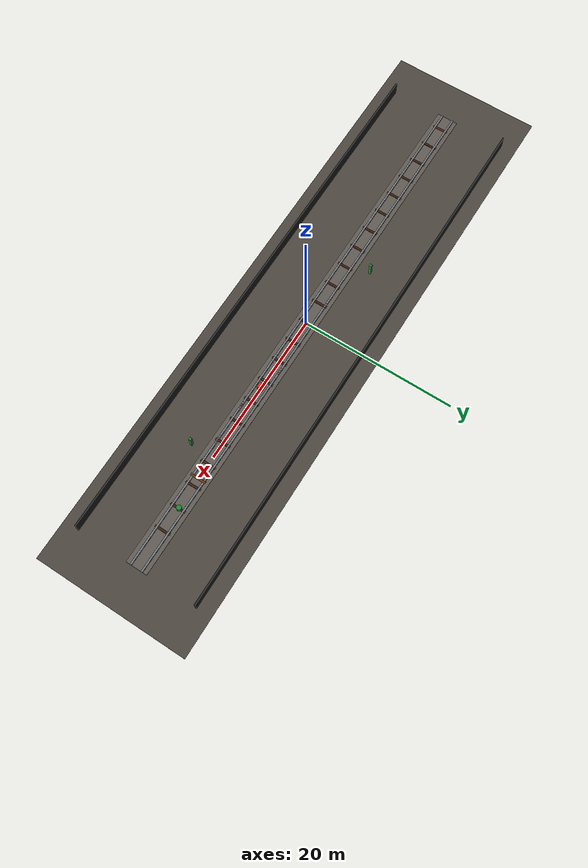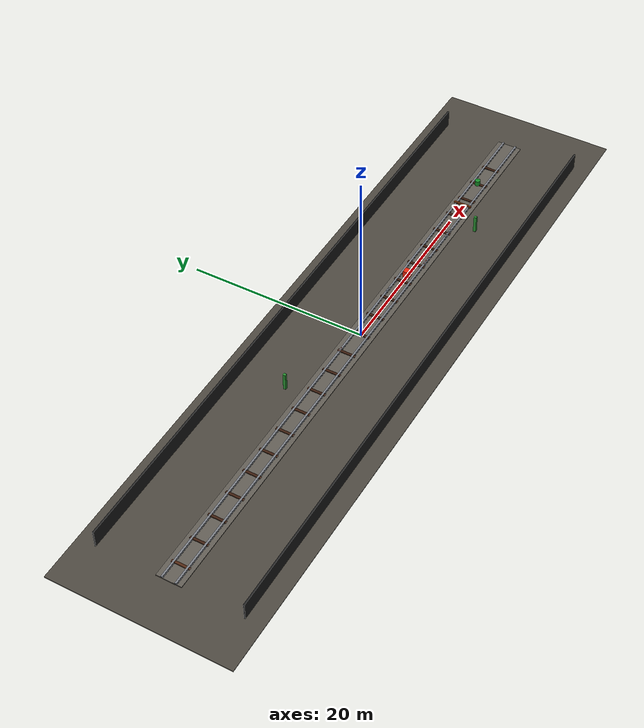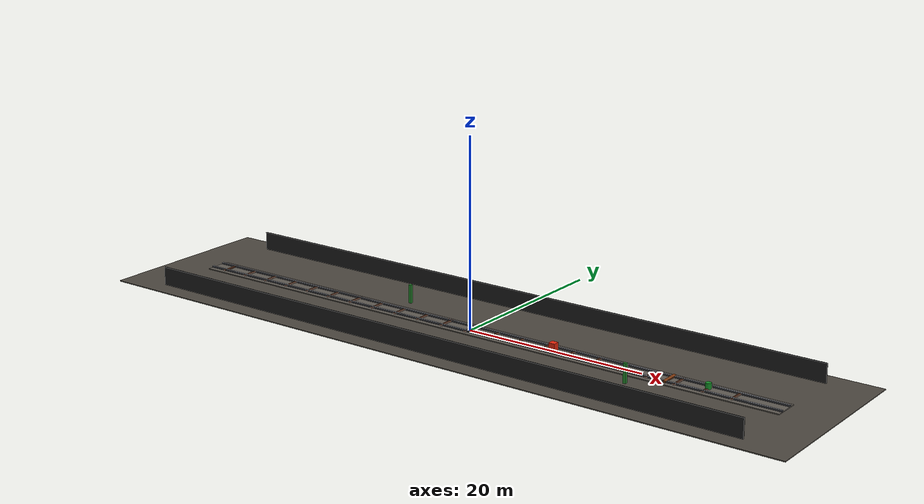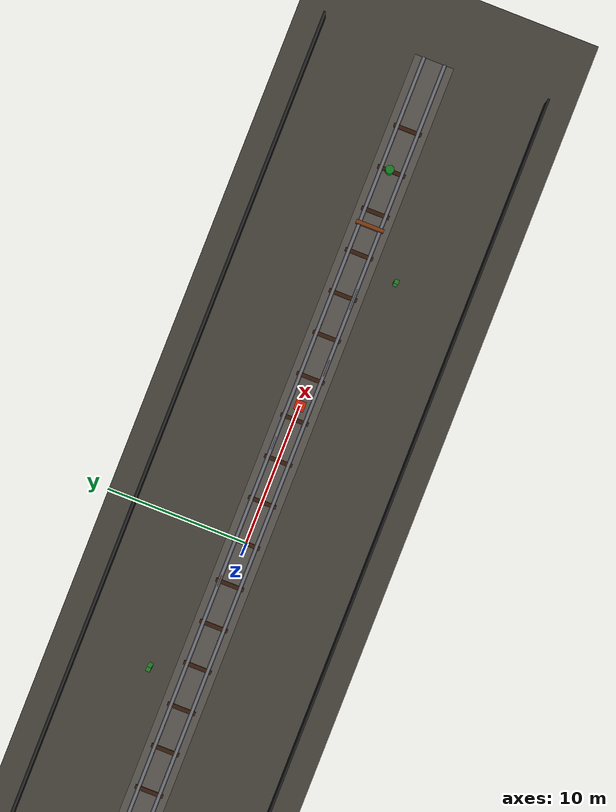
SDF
<?xml version="1.0" ?>

<sdf version="1.6">

  <world name="railway_inspection_world">

    <!-- ==================== PHYSICS ==================== -->

    <physics type="ode">
      <max_step_size>0.001</max_step_size>
      <real_time_update_rate>1000</real_time_update_rate>
      <real_time_factor>1</real_time_factor>
    </physics>

    <!-- ==================== LIGHTING ==================== -->

    <include>
      <uri>model://sun</uri>
    </include>

    <!-- ==================== GROUND ==================== -->

    <model name="ground">
      <static>true</static>

      <link name="ground_link">

        <collision name="ground_collision">
          <geometry>
            <box>
              <size>80 20 0.10</size>
            </box>
          </geometry>
          <pose>0 0 -0.05 0 0 0</pose>
        </collision>

        <visual name="ground_visual">
          <geometry>
            <box>
              <size>80 20 0.10</size>
            </box>
          </geometry>

          <pose>0 0 -0.05 0 0 0</pose>

          <material>
            <ambient>0.22 0.20 0.18 1</ambient>
            <diffuse>0.30 0.28 0.25 1</diffuse>
          </material>

        </visual>

      </link>
    </model>

    <!-- BALLAST BED                                       -->

    <model name="ballast_bed">
      <static>true</static>

      <link name="ballast_link">

        <collision name="ballast_collision">
          <geometry>
            <box>
              <size>70 2.8 0.10</size>
            </box>
          </geometry>
          <pose>0 0 0.05 0 0 0</pose>
        </collision>

        <visual name="ballast_visual">

          <geometry>
            <box>
              <size>70 2.8 0.10</size>
            </box>
          </geometry>

          <pose>0 0 0.05 0 0 0</pose>

          <material>
            <ambient>0.32 0.30 0.28 1</ambient>
            <diffuse>0.38 0.36 0.33 1</diffuse>
          </material>

        </visual>

      </link>
    </model>

    <!-- RAILS                                             -->

    <model name="left_rail">
      <static>true</static>

      <link name="rail_link">

        <collision name="rail_collision">

          <geometry>
            <box>
              <size>70 0.14 0.16</size>
            </box>
          </geometry>

          <pose>0 0.75 0.18 0 0 0</pose>

        </collision>

                  <visual name="rail_base_visual">
            <geometry>
              <box>
                <size>70 0.30 0.035</size>
              </box>
            </geometry>
            <pose>0 0.75 0.105 0 0 0</pose>
            <material>
              <ambient>0.22 0.23 0.25 1</ambient>
              <diffuse>0.30 0.31 0.34 1</diffuse>
              <specular>0.75 0.75 0.78 1</specular>
            </material>
          </visual>

          <visual name="rail_web_visual">
            <geometry>
              <box>
                <size>70 0.10 0.105</size>
              </box>
            </geometry>
            <pose>0 0.75 0.165 0 0 0</pose>
            <material>
              <ambient>0.25 0.26 0.28 1</ambient>
              <diffuse>0.36 0.37 0.40 1</diffuse>
              <specular>0.85 0.85 0.88 1</specular>
            </material>
          </visual>

          <visual name="rail_head_visual">
            <geometry>
              <box>
                <size>70 0.20 0.055</size>
              </box>
            </geometry>
            <pose>0 0.75 0.225 0 0 0</pose>
            <material>
              <ambient>0.36 0.37 0.39 1</ambient>
              <diffuse>0.48 0.49 0.52 1</diffuse>
              <specular>0.95 0.95 0.98 1</specular>
            </material>
          </visual>

      </link>
    </model>

    <model name="right_rail">
      <static>true</static>

      <link name="rail_link">

        <collision name="rail_collision">

          <geometry>
            <box>
              <size>70 0.14 0.16</size>
            </box>
          </geometry>

          <pose>0 -0.75 0.18 0 0 0</pose>

        </collision>

                  <visual name="rail_base_visual">
            <geometry>
              <box>
                <size>70 0.30 0.035</size>
              </box>
            </geometry>
            <pose>0 -0.75 0.105 0 0 0</pose>
            <material>
              <ambient>0.22 0.23 0.25 1</ambient>
              <diffuse>0.30 0.31 0.34 1</diffuse>
              <specular>0.75 0.75 0.78 1</specular>
            </material>
          </visual>

          <visual name="rail_web_visual">
            <geometry>
              <box>
                <size>70 0.10 0.105</size>
              </box>
            </geometry>
            <pose>0 -0.75 0.165 0 0 0</pose>
            <material>
              <ambient>0.25 0.26 0.28 1</ambient>
              <diffuse>0.36 0.37 0.40 1</diffuse>
              <specular>0.85 0.85 0.88 1</specular>
            </material>
          </visual>

          <visual name="rail_head_visual">
            <geometry>
              <box>
                <size>70 0.20 0.055</size>
              </box>
            </geometry>
            <pose>0 -0.75 0.225 0 0 0</pose>
            <material>
              <ambient>0.36 0.37 0.39 1</ambient>
              <diffuse>0.48 0.49 0.52 1</diffuse>
              <specular>0.95 0.95 0.98 1</specular>
            </material>
          </visual>

      </link>
    </model>

    <!-- SLEEPER MACRO                                     -->

    <model name="sleepers">

      <static>true</static>

      <link name="sleeper_link">

        <visual name="sleeper_visual">

          <geometry>
            <box>
              <size>0.28 2.0 0.18</size>
            </box>
          </geometry>

          <material>
            <ambient>0.24 0.12 0.06 1</ambient>
            <diffuse>0.32 0.16 0.08 1</diffuse>
          </material>

        </visual>

        <collision name="sleeper_collision">

          <geometry>
            <box>
              <size>0.28 2.0 0.18</size>
            </box>
          </geometry>

        </collision>

      </link>

      <!-- Repeated sleepers -->

      <pose>-33 0 0.10 0 0 0</pose>

    </model>

    <!-- ADDITIONAL SLEEPERS                               -->

    <model name="sleeper_01">
      <static>true</static>
      <pose>-30 0 0.10 0 0 0</pose>
      <link name="link">
        <visual name="visual">
          <geometry><box><size>0.28 2.0 0.18</size></box></geometry>
          <material><ambient>0.24 0.12 0.06 1</ambient></material>
        </visual>
        <collision name="collision">
          <geometry><box><size>0.28 2.0 0.18</size></box></geometry>
        </collision>
      </link>
    </model>

    <model name="sleeper_02">
      <static>true</static>
      <pose>-27 0 0.10 0 0 0</pose>
      <link name="link">
        <visual name="visual">
          <geometry><box><size>0.28 2.0 0.18</size></box></geometry>
          <material><ambient>0.24 0.12 0.06 1</ambient></material>
        </visual>
        <collision name="collision">
          <geometry><box><size>0.28 2.0 0.18</size></box></geometry>
        </collision>
      </link>
    </model>

    <model name="sleeper_03">
      <static>true</static>
      <pose>-24 0 0.10 0 0 0</pose>
      <link name="link">
        <visual name="visual">
          <geometry><box><size>0.28 2.0 0.18</size></box></geometry>
          <material><ambient>0.24 0.12 0.06 1</ambient></material>
        </visual>
        <collision name="collision">
          <geometry><box><size>0.28 2.0 0.18</size></box></geometry>
        </collision>
      </link>
    </model>

    <model name="sleeper_04">
      <static>true</static>
      <pose>-21 0 0.10 0 0 0</pose>
      <link name="link">
        <visual name="visual">
          <geometry><box><size>0.28 2.0 0.18</size></box></geometry>
          <material><ambient>0.24 0.12 0.06 1</ambient></material>
        </visual>
        <collision name="collision">
          <geometry><box><size>0.28 2.0 0.18</size></box></geometry>
        </collision>
      </link>
    </model>

    <model name="sleeper_05">
      <static>true</static>
      <pose>-18 0 0.10 0 0 0</pose>
      <link name="link">
        <visual name="visual">
          <geometry><box><size>0.28 2.0 0.18</size></box></geometry>
          <material><ambient>0.24 0.12 0.06 1</ambient></material>
        </visual>
        <collision name="collision">
          <geometry><box><size>0.28 2.0 0.18</size></box></geometry>
        </collision>
      </link>
    </model>

    <model name="sleeper_06">
      <static>true</static>
      <pose>-15 0 0.10 0 0 0</pose>
      <link name="link">
        <visual name="visual">
          <geometry><box><size>0.28 2.0 0.18</size></box></geometry>
          <material><ambient>0.24 0.12 0.06 1</ambient></material>
        </visual>
        <collision name="collision">
          <geometry><box><size>0.28 2.0 0.18</size></box></geometry>
        </collision>
      </link>
    </model>

    <model name="sleeper_07">
      <static>true</static>
      <pose>-12 0 0.10 0 0 0</pose>
      <link name="link">
        <visual name="visual">
          <geometry><box><size>0.28 2.0 0.18</size></box></geometry>
          <material><ambient>0.24 0.12 0.06 1</ambient></material>
        </visual>
        <collision name="collision">
          <geometry><box><size>0.28 2.0 0.18</size></box></geometry>
        </collision>
      </link>
    </model>

    <model name="sleeper_08">
      <static>true</static>
      <pose>-9 0 0.10 0 0 0</pose>
      <link name="link">
        <visual name="visual">
          <geometry><box><size>0.28 2.0 0.18</size></box></geometry>
          <material><ambient>0.24 0.12 0.06 1</ambient></material>
        </visual>
        <collision name="collision">
          <geometry><box><size>0.28 2.0 0.18</size></box></geometry>
        </collision>
      </link>
    </model>

    <model name="sleeper_09">
      <static>true</static>
      <pose>-6 0 0.10 0 0 0</pose>
      <link name="link">
        <visual name="visual">
          <geometry><box><size>0.28 2.0 0.18</size></box></geometry>
          <material><ambient>0.24 0.12 0.06 1</ambient></material>
        </visual>
        <collision name="collision">
          <geometry><box><size>0.28 2.0 0.18</size></box></geometry>
        </collision>
      </link>
    </model>

    <model name="sleeper_10">
      <static>true</static>
      <pose>-3 0 0.10 0 0 0</pose>
      <link name="link">
        <visual name="visual">
          <geometry><box><size>0.28 2.0 0.18</size></box></geometry>
          <material><ambient>0.24 0.12 0.06 1</ambient></material>
        </visual>
        <collision name="collision">
          <geometry><box><size>0.28 2.0 0.18</size></box></geometry>
        </collision>
      </link>
    </model>

    <model name="sleeper_11">
      <static>true</static>
      <pose>0 0 0.10 0 0 0</pose>
      <link name="link">
        <visual name="visual">
          <geometry><box><size>0.28 2.0 0.18</size></box></geometry>
          <material><ambient>0.24 0.12 0.06 1</ambient></material>
        </visual>
        <collision name="collision">
          <geometry><box><size>0.28 2.0 0.18</size></box></geometry>
        </collision>
      </link>
    </model>

    <!-- More sleepers continue along the track -->

    <model name="sleeper_12">
      <static>true</static>
      <pose>3 0 0.10 0 0 0</pose>
      <link name="link">
        <visual name="visual">
          <geometry><box><size>0.28 2.0 0.18</size></box></geometry>
          <material><ambient>0.24 0.12 0.06 1</ambient></material>
        </visual>
        <collision name="collision">
          <geometry><box><size>0.28 2.0 0.18</size></box></geometry>
        </collision>
      </link>
    </model>

    <model name="sleeper_13">
      <static>true</static>
      <pose>6 0 0.10 0 0 0</pose>
      <link name="link">
        <visual name="visual">
          <geometry><box><size>0.28 2.0 0.18</size></box></geometry>
          <material><ambient>0.24 0.12 0.06 1</ambient></material>
        </visual>
        <collision name="collision">
          <geometry><box><size>0.28 2.0 0.18</size></box></geometry>
        </collision>
      </link>
    </model>

    <model name="sleeper_14">
      <static>true</static>
      <pose>9 0 0.10 0 0 0</pose>
      <link name="link">
        <visual name="visual">
          <geometry><box><size>0.28 2.0 0.18</size></box></geometry>
          <material><ambient>0.24 0.12 0.06 1</ambient></material>
        </visual>
        <collision name="collision">
          <geometry><box><size>0.28 2.0 0.18</size></box></geometry>
        </collision>
      </link>
    </model>

    <model name="sleeper_15">
      <static>true</static>
      <pose>12 0 0.10 0 0 0</pose>
      <link name="link">
        <visual name="visual">
          <geometry><box><size>0.28 2.0 0.18</size></box></geometry>
          <material><ambient>0.24 0.12 0.06 1</ambient></material>
        </visual>
        <collision name="collision">
          <geometry><box><size>0.28 2.0 0.18</size></box></geometry>
        </collision>
      </link>
    </model>

    <model name="sleeper_16">
      <static>true</static>
      <pose>15 0 0.10 0 0 0</pose>
      <link name="link">
        <visual name="visual">
          <geometry><box><size>0.28 2.0 0.18</size></box></geometry>
          <material><ambient>0.24 0.12 0.06 1</ambient></material>
        </visual>
        <collision name="collision">
          <geometry><box><size>0.28 2.0 0.18</size></box></geometry>
        </collision>
      </link>
    </model>

    <model name="sleeper_17">
      <static>true</static>
      <pose>18 0 0.10 0 0 0</pose>
      <link name="link">
        <visual name="visual">
          <geometry><box><size>0.28 2.0 0.18</size></box></geometry>
          <material><ambient>0.24 0.12 0.06 1</ambient></material>
        </visual>
        <collision name="collision">
          <geometry><box><size>0.28 2.0 0.18</size></box></geometry>
        </collision>
      </link>
    </model>

    <model name="sleeper_18">
      <static>true</static>
      <pose>21 0 0.10 0 0 0</pose>
      <link name="link">
        <visual name="visual">
          <geometry><box><size>0.28 2.0 0.18</size></box></geometry>
          <material><ambient>0.24 0.12 0.06 1</ambient></material>
        </visual>
        <collision name="collision">
          <geometry><box><size>0.28 2.0 0.18</size></box></geometry>
        </collision>
      </link>
    </model>

    <model name="sleeper_19">
      <static>true</static>
      <pose>24 0 0.10 0 0 0</pose>
      <link name="link">
        <visual name="visual">
          <geometry><box><size>0.28 2.0 0.18</size></box></geometry>
          <material><ambient>0.24 0.12 0.06 1</ambient></material>
        </visual>
        <collision name="collision">
          <geometry><box><size>0.28 2.0 0.18</size></box></geometry>
        </collision>
      </link>
    </model>

    <model name="sleeper_20">
      <static>true</static>
      <pose>27 0 0.10 0 0 0</pose>
      <link name="link">
        <visual name="visual">
          <geometry><box><size>0.28 2.0 0.18</size></box></geometry>
          <material><ambient>0.24 0.12 0.06 1</ambient></material>
        </visual>
        <collision name="collision">
          <geometry><box><size>0.28 2.0 0.18</size></box></geometry>
        </collision>
      </link>
    </model>

    <model name="sleeper_21">
      <static>true</static>
      <pose>30 0 0.10 0 0 0</pose>
      <link name="link">
        <visual name="visual">
          <geometry><box><size>0.28 2.0 0.18</size></box></geometry>
          <material><ambient>0.24 0.12 0.06 1</ambient></material>
        </visual>
        <collision name="collision">
          <geometry><box><size>0.28 2.0 0.18</size></box></geometry>
        </collision>
      </link>
    </model>

    <!-- CRACK DEFECTS                                    -->

    <model name="crack_defect_01">
      <static>true</static>
      <pose>7 0.75 0.265 0 0 0</pose>

      <link name="link">

        <visual name="visual">
          <geometry>
            <box>
              <size>1.0 0.025 0.008</size>
            </box>
          </geometry>

          <material>
            <ambient>0.02 0.02 0.02 1</ambient>
            <diffuse>0.02 0.02 0.02 1</diffuse>
          </material>
        </visual>

      </link>
    </model>

    <model name="crack_defect_02">
      <static>true</static>
      <pose>18 -0.75 0.265 0 0 0</pose>

      <link name="link">

        <visual name="visual">
          <geometry>
            <box>
              <size>1.5 0.030 0.008</size>
            </box>
          </geometry>

          <material>
            <ambient>0.01 0.01 0.01 1</ambient>
            <diffuse>0.01 0.01 0.01 1</diffuse>
          </material>
        </visual>

      </link>
    </model>

    <!-- RUST DEFECTS                                     -->

    <model name="rust_defect_01">
      <static>true</static>
      <pose>-3 0.75 0.27 0 0 0</pose>

      <link name="link">

        <visual name="visual">

          <geometry>
            <box>
              <size>0.8 0.025 0.012</size>
            </box>
          </geometry>

          <material>
            <ambient>0.55 0.12 0.03 1</ambient>
            <diffuse>0.70 0.18 0.04 1</diffuse>
          </material>

        </visual>

      </link>

    </model>

    <model name="rust_defect_02">
      <static>true</static>
      <pose>13 -0.75 0.27 0 0 0</pose>

      <link name="link">

        <visual name="visual">

          <geometry>
            <box>
              <size>1.2 0.025 0.012</size>
            </box>
          </geometry>

          <material>
            <ambient>0.55 0.12 0.03 1</ambient>
            <diffuse>0.70 0.18 0.04 1</diffuse>
          </material>

        </visual>

      </link>

    </model>

    <!-- STRUCTURAL DAMAGE                                -->

    <model name="damaged_sleeper">
      <static>true</static>
      <pose>23 0 0.22 0 0.25 0</pose>

      <link name="link">

        <visual name="visual">
          <geometry>
            <box>
              <size>0.28 2.0 0.18</size>
            </box>
          </geometry>

          <material>
            <ambient>0.40 0.18 0.05 1</ambient>
            <diffuse>0.48 0.22 0.06 1</diffuse>
          </material>

        </visual>

        <collision name="collision">
          <geometry>
            <box>
              <size>0.28 2.0 0.18</size>
            </box>
          </geometry>
        </collision>

      </link>

    </model>

    <!-- OBSTACLES                                        -->

    <model name="inspection_obstacle_01">

      <static>true</static>

      <pose>10 0 0.45 0 0 0</pose>

      <link name="link">

        <collision name="collision">
          <geometry>
            <box>
              <size>0.7 0.7 0.9</size>
            </box>
          </geometry>
        </collision>

        <visual name="visual">

          <geometry>
            <box>
              <size>0.7 0.7 0.9</size>
            </box>
          </geometry>

          <material>
            <ambient>0.75 0.10 0.05 1</ambient>
            <diffuse>0.90 0.15 0.05 1</diffuse>
          </material>

        </visual>

      </link>

    </model>

    <model name="inspection_obstacle_02">

      <static>true</static>

      <pose>27 0.15 0.35 0 0 0</pose>

      <link name="link">

        <collision name="collision">
          <geometry>
            <cylinder>
              <radius>0.30</radius>
              <length>0.70</length>
            </cylinder>
          </geometry>
        </collision>

        <visual name="visual">

          <geometry>
            <cylinder>
              <radius>0.30</radius>
              <length>0.70</length>
            </cylinder>
          </geometry>

          <material>
            <ambient>0.05 0.35 0.10 1</ambient>
            <diffuse>0.08 0.55 0.15 1</diffuse>
          </material>

        </visual>

      </link>

    </model>

    <!-- TRACK-SIDE STRUCTURES                             -->

    <model name="track_side_marker_01">
      <static>true</static>
      <pose>-10 3 1.0 0 0 0</pose>

      <link name="link">

        <visual name="visual">
          <geometry>
            <box>
              <size>0.3 0.3 2.0</size>
            </box>
          </geometry>

          <material>
            <ambient>0.10 0.40 0.12 1</ambient>
            <diffuse>0.15 0.55 0.18 1</diffuse>
          </material>

        </visual>

      </link>

    </model>

    <model name="track_side_marker_02">
      <static>true</static>
      <pose>20 -3 1.0 0 0 0</pose>

      <link name="link">

        <visual name="visual">
          <geometry>
            <box>
              <size>0.3 0.3 2.0</size>
            </box>
          </geometry>

          <material>
            <ambient>0.10 0.40 0.12 1</ambient>
            <diffuse>0.15 0.55 0.18 1</diffuse>
          </material>

        </visual>

      </link>

    </model>

    <!-- WORLD BOUNDARIES                                  -->

    <model name="left_boundary">
      <static>true</static>
      <pose>0 8 1.0 0 0 0</pose>

      <link name="link">

        <collision name="collision">
          <geometry>
            <box>
              <size>70 0.15 2.0</size>
            </box>
          </geometry>
        </collision>

        <visual name="visual">
          <geometry>
            <box>
              <size>70 0.15 2.0</size>
            </box>
          </geometry>

          <material>
            <ambient>0.08 0.08 0.08 1</ambient>
            <diffuse>0.12 0.12 0.12 1</diffuse>
          </material>
        </visual>

      </link>
    </model>

    <model name="right_boundary">
      <static>true</static>
      <pose>0 -8 1.0 0 0 0</pose>

      <link name="link">

        <collision name="collision">
          <geometry>
            <box>
              <size>70 0.15 2.0</size>
            </box>
          </geometry>
        </collision>

        <visual name="visual">
          <geometry>
            <box>
              <size>70 0.15 2.0</size>
            </box>
          </geometry>

          <material>
            <ambient>0.08 0.08 0.08 1</ambient>
            <diffuse>0.12 0.12 0.12 1</diffuse>
          </material>
        </visual>

      </link>
    </model>

    <!-- ==================== WORLD END ==================== -->

    <!-- ==================== GUI CAMERA VIEW ==================== -->
    <gui fullscreen="0">
      <camera name="user_camera">
        <pose>-36.0 -4.5 3.2 0 0.30 0.50</pose>
        <view_controller>orbit</view_controller>
      </camera>
    </gui>

  </world>

</sdf>
